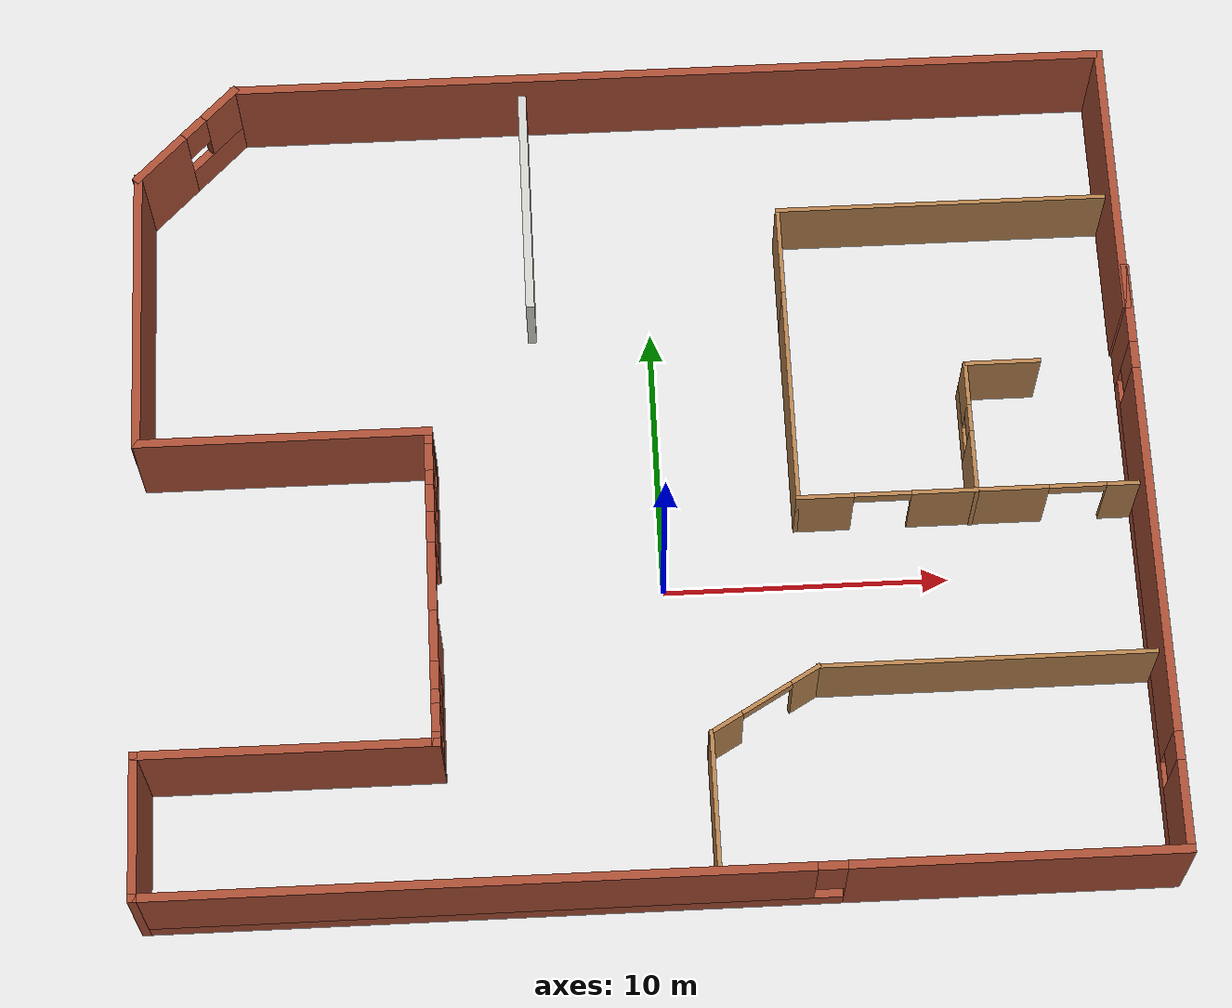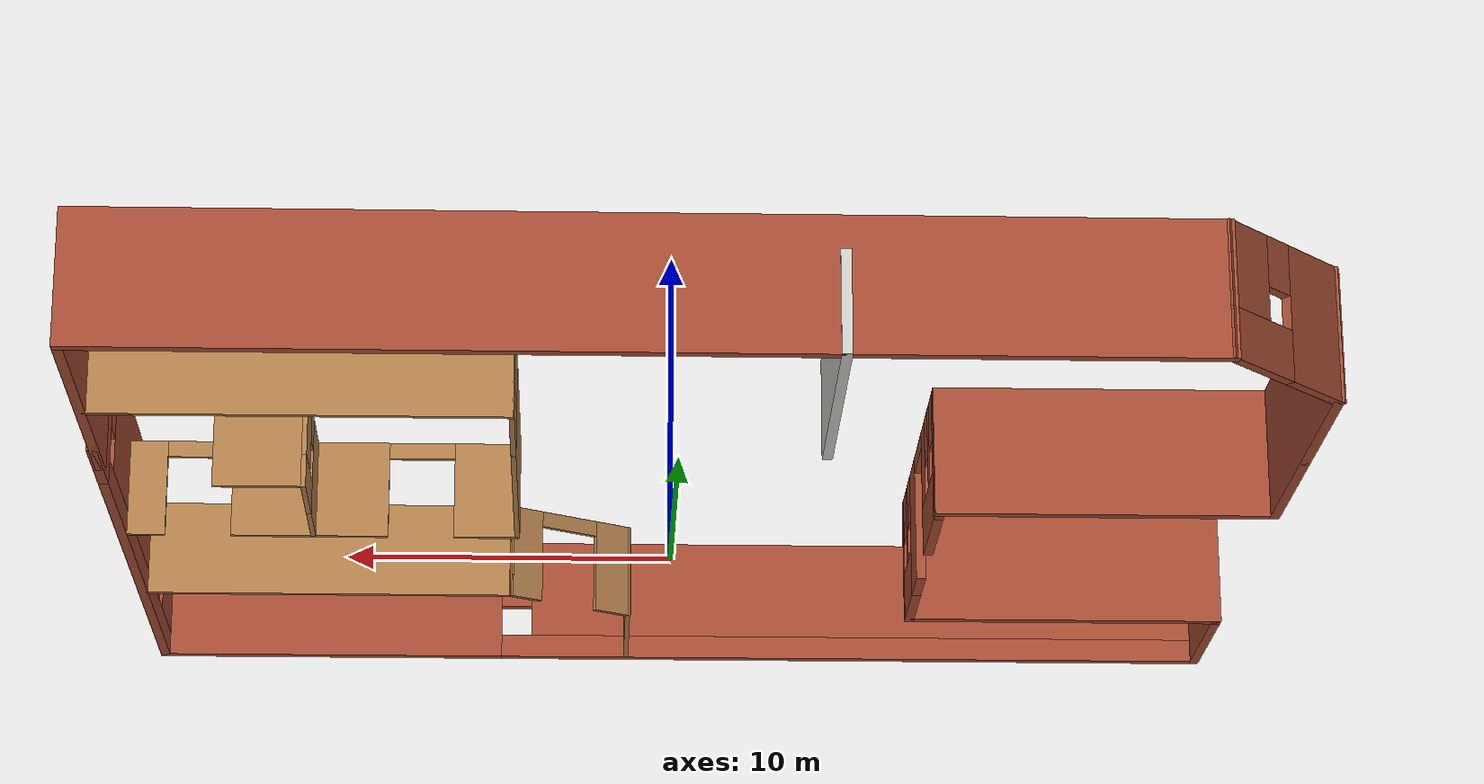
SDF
<?xml version='1.0'?>
<sdf version='1.6'>
  <model name='Building'>
    <pose frame=''>-0.669065 3.67457 0 0 -0 0</pose>
    <link name='Wall_12'>
      <collision name='Wall_12_Collision'>
        <geometry>
          <box>
            <size>10.4 0.3 4</size>
          </box>
        </geometry>
        <pose frame=''>0 0 2 0 -0 0</pose>
      </collision>
      <visual name='Wall_12_Visual'>
        <pose frame=''>0 0 2 0 -0 0</pose>
        <geometry>
          <box>
            <size>10.4 0.3 4</size>
          </box>
        </geometry>
        <material>
          <script>
            <uri>file://media/materials/scripts/gazebo.material</uri>
            <name>Gazebo/Bricks</name>
          </script>
          <ambient>0.333333 0 0 1</ambient>
        </material>
        <meta>
          <layer>0</layer>
        </meta>
      </visual>
      <pose frame=''>-12.3439 1.20443 0 0 -0 0</pose>
    </link>
    <link name='Wall_13'>
      <pose frame=''>-7.29394 -4.47057 0 0 0 -1.5708</pose>
      <visual name='Wall_13_Visual_0'>
        <pose frame=''>-5.51365 0 2 0 -0 0</pose>
        <geometry>
          <box>
            <size>0.62261 0.3 4</size>
          </box>
        </geometry>
        <material>
          <script>
            <uri>file://media/materials/scripts/gazebo.material</uri>
            <name>Gazebo/Bricks</name>
          </script>
          <ambient>0.333333 0 0 1</ambient>
        </material>
        <meta>
          <layer>0</layer>
        </meta>
      </visual>
      <collision name='Wall_13_Collision_0'>
        <geometry>
          <box>
            <size>0.62261 0.3 4</size>
          </box>
        </geometry>
        <pose frame=''>-5.51365 0 2 0 -0 0</pose>
      </collision>
      <visual name='Wall_13_Visual_1'>
        <pose frame=''>1.88818 0 2 0 -0 0</pose>
        <geometry>
          <box>
            <size>1.83467 0.3 4</size>
          </box>
        </geometry>
        <material>
          <script>
            <uri>file://media/materials/scripts/gazebo.material</uri>
            <name>Gazebo/Bricks</name>
          </script>
          <ambient>0.333333 0 0 1</ambient>
        </material>
        <meta>
          <layer>0</layer>
        </meta>
      </visual>
      <collision name='Wall_13_Collision_1'>
        <geometry>
          <box>
            <size>1.83467 0.3 4</size>
          </box>
        </geometry>
        <pose frame=''>1.88818 0 2 0 -0 0</pose>
      </collision>
      <visual name='Wall_13_Visual_2'>
        <pose frame=''>-3.36575 0 0.75 0 -0 0</pose>
        <geometry>
          <box>
            <size>3.6732 0.3 1.5</size>
          </box>
        </geometry>
        <material>
          <script>
            <uri>file://media/materials/scripts/gazebo.material</uri>
            <name>Gazebo/Bricks</name>
          </script>
          <ambient>0.333333 0 0 1</ambient>
        </material>
        <meta>
          <layer>0</layer>
        </meta>
      </visual>
      <collision name='Wall_13_Collision_2'>
        <geometry>
          <box>
            <size>3.6732 0.3 1.5</size>
          </box>
        </geometry>
        <pose frame=''>-3.36575 0 0.75 0 -0 0</pose>
      </collision>
      <visual name='Wall_13_Visual_3'>
        <pose frame=''>4.31524 0 0.75 0 -0 0</pose>
        <geometry>
          <box>
            <size>3.01944 0.3 1.5</size>
          </box>
        </geometry>
        <material>
          <script>
            <uri>file://media/materials/scripts/gazebo.material</uri>
            <name>Gazebo/Bricks</name>
          </script>
          <ambient>0.333333 0 0 1</ambient>
        </material>
        <meta>
          <layer>0</layer>
        </meta>
      </visual>
      <collision name='Wall_13_Collision_3'>
        <geometry>
          <box>
            <size>3.01944 0.3 1.5</size>
          </box>
        </geometry>
        <pose frame=''>4.31524 0 0.75 0 -0 0</pose>
      </collision>
      <visual name='Wall_13_Visual_4'>
        <pose frame=''>-3.93532 0 2.75 0 -0 0</pose>
        <geometry>
          <box>
            <size>0.534062 0.3 2.5</size>
          </box>
        </geometry>
        <material>
          <script>
            <uri>file://media/materials/scripts/gazebo.material</uri>
            <name>Gazebo/Bricks</name>
          </script>
          <ambient>0.333333 0 0 1</ambient>
        </material>
        <meta>
          <layer>0</layer>
        </meta>
      </visual>
      <collision name='Wall_13_Collision_4'>
        <geometry>
          <box>
            <size>0.534062 0.3 2.5</size>
          </box>
        </geometry>
        <pose frame=''>-3.93532 0 2.75 0 -0 0</pose>
      </collision>
      <visual name='Wall_13_Visual_5'>
        <pose frame=''>-2.09872 0 2.75 0 -0 0</pose>
        <geometry>
          <box>
            <size>1.13914 0.3 2.5</size>
          </box>
        </geometry>
        <material>
          <script>
            <uri>file://media/materials/scripts/gazebo.material</uri>
            <name>Gazebo/Bricks</name>
          </script>
          <ambient>0.333333 0 0 1</ambient>
        </material>
        <meta>
          <layer>0</layer>
        </meta>
      </visual>
      <collision name='Wall_13_Collision_5'>
        <geometry>
          <box>
            <size>1.13914 0.3 2.5</size>
          </box>
        </geometry>
        <pose frame=''>-2.09872 0 2.75 0 -0 0</pose>
      </collision>
      <visual name='Wall_13_Visual_6'>
        <pose frame=''>-2.09872 0 2.75 0 -0 0</pose>
        <geometry>
          <box>
            <size>1.13914 0.3 2.5</size>
          </box>
        </geometry>
        <material>
          <script>
            <uri>file://media/materials/scripts/gazebo.material</uri>
            <name>Gazebo/Bricks</name>
          </script>
          <ambient>0.333333 0 0 1</ambient>
        </material>
        <meta>
          <layer>0</layer>
        </meta>
      </visual>
      <collision name='Wall_13_Collision_6'>
        <geometry>
          <box>
            <size>1.13914 0.3 2.5</size>
          </box>
        </geometry>
        <pose frame=''>-2.09872 0 2.75 0 -0 0</pose>
      </collision>
      <visual name='Wall_13_Visual_7'>
        <pose frame=''>4.05455 0 2.75 0 -0 0</pose>
        <geometry>
          <box>
            <size>0.49807 0.3 2.5</size>
          </box>
        </geometry>
        <material>
          <script>
            <uri>file://media/materials/scripts/gazebo.material</uri>
            <name>Gazebo/Bricks</name>
          </script>
          <ambient>0.333333 0 0 1</ambient>
        </material>
        <meta>
          <layer>0</layer>
        </meta>
      </visual>
      <collision name='Wall_13_Collision_7'>
        <geometry>
          <box>
            <size>0.49807 0.3 2.5</size>
          </box>
        </geometry>
        <pose frame=''>4.05455 0 2.75 0 -0 0</pose>
      </collision>
      <visual name='Wall_13_Visual_8'>
        <pose frame=''>5.56427 0 2.75 0 -0 0</pose>
        <geometry>
          <box>
            <size>0.521372 0.3 2.5</size>
          </box>
        </geometry>
        <material>
          <script>
            <uri>file://media/materials/scripts/gazebo.material</uri>
            <name>Gazebo/Bricks</name>
          </script>
          <ambient>0.333333 0 0 1</ambient>
        </material>
        <meta>
          <layer>0</layer>
        </meta>
      </visual>
      <collision name='Wall_13_Collision_8'>
        <geometry>
          <box>
            <size>0.521372 0.3 2.5</size>
          </box>
        </geometry>
        <pose frame=''>5.56427 0 2.75 0 -0 0</pose>
      </collision>
      <visual name='Wall_13_Visual_9'>
        <pose frame=''>-4.70235 0 3.25 0 -0 0</pose>
        <geometry>
          <box>
            <size>1 0.3 1.5</size>
          </box>
        </geometry>
        <material>
          <script>
            <uri>file://media/materials/scripts/gazebo.material</uri>
            <name>Gazebo/Bricks</name>
          </script>
          <ambient>0.333333 0 0 1</ambient>
        </material>
        <meta>
          <layer>0</layer>
        </meta>
      </visual>
      <collision name='Wall_13_Collision_9'>
        <geometry>
          <box>
            <size>1 0.3 1.5</size>
          </box>
        </geometry>
        <pose frame=''>-4.70235 0 3.25 0 -0 0</pose>
      </collision>
      <visual name='Wall_13_Visual_10'>
        <pose frame=''>3.30552 0 3.25 0 -0 0</pose>
        <geometry>
          <box>
            <size>1 0.3 1.5</size>
          </box>
        </geometry>
        <material>
          <script>
            <uri>file://media/materials/scripts/gazebo.material</uri>
            <name>Gazebo/Bricks</name>
          </script>
          <ambient>0.333333 0 0 1</ambient>
        </material>
        <meta>
          <layer>0</layer>
        </meta>
      </visual>
      <collision name='Wall_13_Collision_10'>
        <geometry>
          <box>
            <size>1 0.3 1.5</size>
          </box>
        </geometry>
        <pose frame=''>3.30552 0 3.25 0 -0 0</pose>
      </collision>
      <visual name='Wall_13_Visual_11'>
        <pose frame=''>-3.16829 0 3.25 0 -0 0</pose>
        <geometry>
          <box>
            <size>1 0.3 1.5</size>
          </box>
        </geometry>
        <material>
          <script>
            <uri>file://media/materials/scripts/gazebo.material</uri>
            <name>Gazebo/Bricks</name>
          </script>
          <ambient>0.333333 0 0 1</ambient>
        </material>
        <meta>
          <layer>0</layer>
        </meta>
      </visual>
      <collision name='Wall_13_Collision_11'>
        <geometry>
          <box>
            <size>1 0.3 1.5</size>
          </box>
        </geometry>
        <pose frame=''>-3.16829 0 3.25 0 -0 0</pose>
      </collision>
      <visual name='Wall_13_Visual_12'>
        <pose frame=''>4.80359 0 3.25 0 -0 0</pose>
        <geometry>
          <box>
            <size>1 0.3 1.5</size>
          </box>
        </geometry>
        <material>
          <script>
            <uri>file://media/materials/scripts/gazebo.material</uri>
            <name>Gazebo/Bricks</name>
          </script>
          <ambient>0.333333 0 0 1</ambient>
        </material>
        <meta>
          <layer>0</layer>
        </meta>
      </visual>
      <collision name='Wall_13_Collision_12'>
        <geometry>
          <box>
            <size>1 0.3 1.5</size>
          </box>
        </geometry>
        <pose frame=''>4.80359 0 3.25 0 -0 0</pose>
      </collision>
      <visual name='Wall_13_Visual_13'>
        <pose frame=''>-0.279151 0 3.75 0 -0 0</pose>
        <geometry>
          <box>
            <size>2.5 0.3 0.5</size>
          </box>
        </geometry>
        <material>
          <script>
            <uri>file://media/materials/scripts/gazebo.material</uri>
            <name>Gazebo/Bricks</name>
          </script>
          <ambient>0.333333 0 0 1</ambient>
        </material>
        <meta>
          <layer>0</layer>
        </meta>
      </visual>
      <collision name='Wall_13_Collision_13'>
        <geometry>
          <box>
            <size>2.5 0.3 0.5</size>
          </box>
        </geometry>
        <pose frame=''>-0.279151 0 3.75 0 -0 0</pose>
      </collision>
      <visual name='Wall_13_Visual_14'>
        <pose frame=''>-0.279151 0 3.75 0 -0 0</pose>
        <geometry>
          <box>
            <size>2.5 0.3 0.5</size>
          </box>
        </geometry>
        <material>
          <script>
            <uri>file://media/materials/scripts/gazebo.material</uri>
            <name>Gazebo/Bricks</name>
          </script>
          <ambient>0.333333 0 0 1</ambient>
        </material>
        <meta>
          <layer>0</layer>
        </meta>
      </visual>
      <collision name='Wall_13_Collision_14'>
        <geometry>
          <box>
            <size>2.5 0.3 0.5</size>
          </box>
        </geometry>
        <pose frame=''>-0.279151 0 3.75 0 -0 0</pose>
      </collision>
    </link>
    <link name='Wall_14'>
      <collision name='Wall_14_Collision'>
        <geometry>
          <box>
            <size>10.4 0.3 4</size>
          </box>
        </geometry>
        <pose frame=''>0 0 2 0 -0 0</pose>
      </collision>
      <visual name='Wall_14_Visual'>
        <pose frame=''>0 0 2 0 -0 0</pose>
        <geometry>
          <box>
            <size>10.4 0.3 4</size>
          </box>
        </geometry>
        <material>
          <script>
            <uri>file://media/materials/scripts/gazebo.material</uri>
            <name>Gazebo/Bricks</name>
          </script>
          <ambient>0.333333 0 0 1</ambient>
        </material>
        <meta>
          <layer>0</layer>
        </meta>
      </visual>
      <pose frame=''>-12.3439 -10.1456 0 0 -0 3.14159</pose>
    </link>
    <link name='Wall_15'>
      <collision name='Wall_15_Collision'>
        <geometry>
          <box>
            <size>5.2 0.3 4</size>
          </box>
        </geometry>
        <pose frame=''>0 0 2 0 -0 0</pose>
      </collision>
      <visual name='Wall_15_Visual'>
        <pose frame=''>0 0 2 0 -0 0</pose>
        <geometry>
          <box>
            <size>5.2 0.3 4</size>
          </box>
        </geometry>
        <material>
          <script>
            <uri>file://media/materials/scripts/gazebo.material</uri>
            <name>Gazebo/Bricks</name>
          </script>
          <ambient>0.333333 0 0 1</ambient>
        </material>
        <meta>
          <layer>0</layer>
        </meta>
      </visual>
      <pose frame=''>-17.3939 -12.5956 0 0 0 -1.5708</pose>
    </link>
    <link name='Wall_17'>
      <collision name='Wall_17_Collision'>
        <geometry>
          <box>
            <size>8 0.15 3</size>
          </box>
        </geometry>
        <pose frame=''>0 0 1.5 0 -0 0</pose>
      </collision>
      <visual name='Wall_17_Visual'>
        <pose frame=''>0 0 1.5 0 -0 0</pose>
        <geometry>
          <box>
            <size>8 0.15 3</size>
          </box>
        </geometry>
        <material>
          <script>
            <uri>file://media/materials/scripts/gazebo.material</uri>
            <name>Gazebo/Wood</name>
          </script>
          <ambient>0.921569 0.807843 0.615686 1</ambient>
        </material>
        <meta>
          <layer>0</layer>
        </meta>
      </visual>
      <pose frame=''>5.41606 2.42343 0 0 0 -1.5708</pose>
    </link>
    <link name='Wall_18'>
      <pose frame=''>11.4661 -1.50157 0 0 -0 0</pose>
      <visual name='Wall_18_Visual_0'>
        <pose frame=''>-5.11618 0 1.5 0 -0 0</pose>
        <geometry>
          <box>
            <size>2.01764 0.15 3</size>
          </box>
        </geometry>
        <material>
          <script>
            <uri>file://media/materials/scripts/gazebo.material</uri>
            <name>Gazebo/Wood</name>
          </script>
          <ambient>0.921569 0.807843 0.615686 1</ambient>
        </material>
        <meta>
          <layer>0</layer>
        </meta>
      </visual>
      <collision name='Wall_18_Collision_0'>
        <geometry>
          <box>
            <size>2.01764 0.15 3</size>
          </box>
        </geometry>
        <pose frame=''>-5.11618 0 1.5 0 -0 0</pose>
      </collision>
      <visual name='Wall_18_Visual_1'>
        <pose frame=''>0.290046 0 1.5 0 -0 0</pose>
        <geometry>
          <box>
            <size>4.79482 0.15 3</size>
          </box>
        </geometry>
        <material>
          <script>
            <uri>file://media/materials/scripts/gazebo.material</uri>
            <name>Gazebo/Wood</name>
          </script>
          <ambient>0.921569 0.807843 0.615686 1</ambient>
        </material>
        <meta>
          <layer>0</layer>
        </meta>
      </visual>
      <collision name='Wall_18_Collision_1'>
        <geometry>
          <box>
            <size>4.79482 0.15 3</size>
          </box>
        </geometry>
        <pose frame=''>0.290046 0 1.5 0 -0 0</pose>
      </collision>
      <visual name='Wall_18_Visual_2'>
        <pose frame=''>5.40623 0 1.5 0 -0 0</pose>
        <geometry>
          <box>
            <size>1.43755 0.15 3</size>
          </box>
        </geometry>
        <material>
          <script>
            <uri>file://media/materials/scripts/gazebo.material</uri>
            <name>Gazebo/Wood</name>
          </script>
          <ambient>0.921569 0.807843 0.615686 1</ambient>
        </material>
        <meta>
          <layer>0</layer>
        </meta>
      </visual>
      <collision name='Wall_18_Collision_2'>
        <geometry>
          <box>
            <size>1.43755 0.15 3</size>
          </box>
        </geometry>
        <pose frame=''>5.40623 0 1.5 0 -0 0</pose>
      </collision>
      <visual name='Wall_18_Visual_3'>
        <pose frame=''>-3.10736 0 2.75 0 -0 0</pose>
        <geometry>
          <box>
            <size>2 0.15 0.5</size>
          </box>
        </geometry>
        <material>
          <script>
            <uri>file://media/materials/scripts/gazebo.material</uri>
            <name>Gazebo/Wood</name>
          </script>
          <ambient>0.921569 0.807843 0.615686 1</ambient>
        </material>
        <meta>
          <layer>0</layer>
        </meta>
      </visual>
      <collision name='Wall_18_Collision_3'>
        <geometry>
          <box>
            <size>2 0.15 0.5</size>
          </box>
        </geometry>
        <pose frame=''>-3.10736 0 2.75 0 -0 0</pose>
      </collision>
      <visual name='Wall_18_Visual_4'>
        <pose frame=''>3.68745 0 2.75 0 -0 0</pose>
        <geometry>
          <box>
            <size>2 0.15 0.5</size>
          </box>
        </geometry>
        <material>
          <script>
            <uri>file://media/materials/scripts/gazebo.material</uri>
            <name>Gazebo/Wood</name>
          </script>
          <ambient>0.921569 0.807843 0.615686 1</ambient>
        </material>
        <meta>
          <layer>0</layer>
        </meta>
      </visual>
      <collision name='Wall_18_Collision_4'>
        <geometry>
          <box>
            <size>2 0.15 0.5</size>
          </box>
        </geometry>
        <pose frame=''>3.68745 0 2.75 0 -0 0</pose>
      </collision>
    </link>
    <link name='Wall_2'>
      <pose frame=''>17.4561 -4.37057 0 0 0 -1.5708</pose>
      <visual name='Wall_2_Visual_0'>
        <pose frame=''>-9.30999 0 2 0 -0 0</pose>
        <geometry>
          <box>
            <size>3.03002 0.3 4</size>
          </box>
        </geometry>
        <material>
          <script>
            <uri>file://media/materials/scripts/gazebo.material</uri>
            <name>Gazebo/Bricks</name>
          </script>
          <ambient>0.333333 0 0 1</ambient>
        </material>
        <meta>
          <layer>0</layer>
        </meta>
      </visual>
      <collision name='Wall_2_Collision_0'>
        <geometry>
          <box>
            <size>3.03002 0.3 4</size>
          </box>
        </geometry>
        <pose frame=''>-9.30999 0 2 0 -0 0</pose>
      </collision>
      <visual name='Wall_2_Visual_1'>
        <pose frame=''>1.51501 0 0.375 0 -0 0</pose>
        <geometry>
          <box>
            <size>18.62 0.3 0.75</size>
          </box>
        </geometry>
        <material>
          <script>
            <uri>file://media/materials/scripts/gazebo.material</uri>
            <name>Gazebo/Bricks</name>
          </script>
          <ambient>0.333333 0 0 1</ambient>
        </material>
        <meta>
          <layer>0</layer>
        </meta>
      </visual>
      <collision name='Wall_2_Collision_1'>
        <geometry>
          <box>
            <size>18.62 0.3 0.75</size>
          </box>
        </geometry>
        <pose frame=''>1.51501 0 0.375 0 -0 0</pose>
      </collision>
      <visual name='Wall_2_Visual_2'>
        <pose frame=''>-0.098897 0 2.375 0 -0 0</pose>
        <geometry>
          <box>
            <size>13.3922 0.3 3.25</size>
          </box>
        </geometry>
        <material>
          <script>
            <uri>file://media/materials/scripts/gazebo.material</uri>
            <name>Gazebo/Bricks</name>
          </script>
          <ambient>0.333333 0 0 1</ambient>
        </material>
        <meta>
          <layer>0</layer>
        </meta>
      </visual>
      <collision name='Wall_2_Collision_2'>
        <geometry>
          <box>
            <size>13.3922 0.3 3.25</size>
          </box>
        </geometry>
        <pose frame=''>-0.098897 0 2.375 0 -0 0</pose>
      </collision>
      <visual name='Wall_2_Visual_3'>
        <pose frame=''>9.2111 0 2.375 0 -0 0</pose>
        <geometry>
          <box>
            <size>3.22781 0.3 3.25</size>
          </box>
        </geometry>
        <material>
          <script>
            <uri>file://media/materials/scripts/gazebo.material</uri>
            <name>Gazebo/Bricks</name>
          </script>
          <ambient>0.333333 0 0 1</ambient>
        </material>
        <meta>
          <layer>0</layer>
        </meta>
      </visual>
      <collision name='Wall_2_Collision_3'>
        <geometry>
          <box>
            <size>3.22781 0.3 3.25</size>
          </box>
        </geometry>
        <pose frame=''>9.2111 0 2.375 0 -0 0</pose>
      </collision>
      <visual name='Wall_2_Visual_4'>
        <pose frame=''>-7.29498 0 2.875 0 -0 0</pose>
        <geometry>
          <box>
            <size>1 0.3 2.25</size>
          </box>
        </geometry>
        <material>
          <script>
            <uri>file://media/materials/scripts/gazebo.material</uri>
            <name>Gazebo/Bricks</name>
          </script>
          <ambient>0.333333 0 0 1</ambient>
        </material>
        <meta>
          <layer>0</layer>
        </meta>
      </visual>
      <collision name='Wall_2_Collision_4'>
        <geometry>
          <box>
            <size>1 0.3 2.25</size>
          </box>
        </geometry>
        <pose frame=''>-7.29498 0 2.875 0 -0 0</pose>
      </collision>
      <visual name='Wall_2_Visual_5'>
        <pose frame=''>7.09719 0 2.875 0 -0 0</pose>
        <geometry>
          <box>
            <size>1 0.3 2.25</size>
          </box>
        </geometry>
        <material>
          <script>
            <uri>file://media/materials/scripts/gazebo.material</uri>
            <name>Gazebo/Bricks</name>
          </script>
          <ambient>0.333333 0 0 1</ambient>
        </material>
        <meta>
          <layer>0</layer>
        </meta>
      </visual>
      <collision name='Wall_2_Collision_5'>
        <geometry>
          <box>
            <size>1 0.3 2.25</size>
          </box>
        </geometry>
        <pose frame=''>7.09719 0 2.875 0 -0 0</pose>
      </collision>
    </link>
    <link name='Wall_23'>
      <collision name='Wall_23_Collision'>
        <geometry>
          <box>
            <size>5.25 0.15 3</size>
          </box>
        </geometry>
        <pose frame=''>0 0 1.5 0 -0 0</pose>
      </collision>
      <visual name='Wall_23_Visual'>
        <pose frame=''>0 0 1.5 0 -0 0</pose>
        <geometry>
          <box>
            <size>5.25 0.15 3</size>
          </box>
        </geometry>
        <material>
          <script>
            <uri>file://media/materials/scripts/gazebo.material</uri>
            <name>Gazebo/Wood</name>
          </script>
          <ambient>0.333333 0.333333 1 1</ambient>
        </material>
        <meta>
          <layer>0</layer>
        </meta>
      </visual>
      <pose frame=''>1.93806 -12.4486 0 0 -0 1.5708</pose>
    </link>
    <link name='Wall_24'>
      <pose frame=''>3.82206 -8.81107 0 0 -0 0.523508</pose>
      <visual name='Wall_24_Visual_0'>
        <pose frame=''>-1.59211 0 1.5 0 -0 0</pose>
        <geometry>
          <box>
            <size>1.31578 0.15 3</size>
          </box>
        </geometry>
        <material>
          <script>
            <uri>file://media/materials/scripts/gazebo.material</uri>
            <name>Gazebo/Wood</name>
          </script>
          <ambient>0.333333 0.333333 1 1</ambient>
        </material>
        <meta>
          <layer>0</layer>
        </meta>
      </visual>
      <collision name='Wall_24_Collision_0'>
        <geometry>
          <box>
            <size>1.31578 0.15 3</size>
          </box>
        </geometry>
        <pose frame=''>-1.59211 0 1.5 0 -0 0</pose>
      </collision>
      <visual name='Wall_24_Visual_1'>
        <pose frame=''>1.65789 0 1.5 0 -0 0</pose>
        <geometry>
          <box>
            <size>1.18422 0.15 3</size>
          </box>
        </geometry>
        <material>
          <script>
            <uri>file://media/materials/scripts/gazebo.material</uri>
            <name>Gazebo/Wood</name>
          </script>
          <ambient>0.333333 0.333333 1 1</ambient>
        </material>
        <meta>
          <layer>0</layer>
        </meta>
      </visual>
      <collision name='Wall_24_Collision_1'>
        <geometry>
          <box>
            <size>1.18422 0.15 3</size>
          </box>
        </geometry>
        <pose frame=''>1.65789 0 1.5 0 -0 0</pose>
      </collision>
      <visual name='Wall_24_Visual_2'>
        <pose frame=''>0.065781 0 2.75 0 -0 0</pose>
        <geometry>
          <box>
            <size>2 0.15 0.5</size>
          </box>
        </geometry>
        <material>
          <script>
            <uri>file://media/materials/scripts/gazebo.material</uri>
            <name>Gazebo/Wood</name>
          </script>
          <ambient>0.333333 0.333333 1 1</ambient>
        </material>
        <meta>
          <layer>0</layer>
        </meta>
      </visual>
      <collision name='Wall_24_Collision_2'>
        <geometry>
          <box>
            <size>2 0.15 0.5</size>
          </box>
        </geometry>
        <pose frame=''>0.065781 0 2.75 0 -0 0</pose>
      </collision>
    </link>
    <link name='Wall_25'>
      <collision name='Wall_25_Collision'>
        <geometry>
          <box>
            <size>11.75 0.15 3</size>
          </box>
        </geometry>
        <pose frame=''>0 0 1.5 0 -0 0</pose>
      </collision>
      <visual name='Wall_25_Visual'>
        <pose frame=''>0 0 1.5 0 -0 0</pose>
        <geometry>
          <box>
            <size>11.75 0.15 3</size>
          </box>
        </geometry>
        <material>
          <script>
            <uri>file://media/materials/scripts/gazebo.material</uri>
            <name>Gazebo/Wood</name>
          </script>
          <ambient>0.333333 0.333333 1 1</ambient>
        </material>
        <meta>
          <layer>0</layer>
        </meta>
      </visual>
      <pose frame=''>11.5061 -7.72357 0 0 -0 0</pose>
    </link>
    <link name='Wall_27'>
      <pose frame=''>11.6311 0.898434 0 0 -0 1.5708</pose>
      <visual name='Wall_27_Visual_0'>
        <pose frame=''>-1.33266 0 1.5 0 -0 0</pose>
        <geometry>
          <box>
            <size>2.33468 0.15 3</size>
          </box>
        </geometry>
        <material>
          <script>
            <uri>file://media/materials/scripts/gazebo.material</uri>
            <name>Gazebo/Wood</name>
          </script>
          <ambient>0.921569 0.807843 0.615686 1</ambient>
        </material>
        <meta>
          <layer>0</layer>
        </meta>
      </visual>
      <collision name='Wall_27_Collision_0'>
        <geometry>
          <box>
            <size>2.33468 0.15 3</size>
          </box>
        </geometry>
        <pose frame=''>-1.33266 0 1.5 0 -0 0</pose>
      </collision>
      <visual name='Wall_27_Visual_1'>
        <pose frame=''>1.16734 0 0.5 0 -0 0</pose>
        <geometry>
          <box>
            <size>2.66532 0.15 1</size>
          </box>
        </geometry>
        <material>
          <script>
            <uri>file://media/materials/scripts/gazebo.material</uri>
            <name>Gazebo/Wood</name>
          </script>
          <ambient>0.921569 0.807843 0.615686 1</ambient>
        </material>
        <meta>
          <layer>0</layer>
        </meta>
      </visual>
      <collision name='Wall_27_Collision_1'>
        <geometry>
          <box>
            <size>2.66532 0.15 1</size>
          </box>
        </geometry>
        <pose frame=''>1.16734 0 0.5 0 -0 0</pose>
      </collision>
      <visual name='Wall_27_Visual_2'>
        <pose frame=''>1.66734 0 2 0 -0 0</pose>
        <geometry>
          <box>
            <size>1.66532 0.15 2</size>
          </box>
        </geometry>
        <material>
          <script>
            <uri>file://media/materials/scripts/gazebo.material</uri>
            <name>Gazebo/Wood</name>
          </script>
          <ambient>0.921569 0.807843 0.615686 1</ambient>
        </material>
        <meta>
          <layer>0</layer>
        </meta>
      </visual>
      <collision name='Wall_27_Collision_2'>
        <geometry>
          <box>
            <size>1.66532 0.15 2</size>
          </box>
        </geometry>
        <pose frame=''>1.66734 0 2 0 -0 0</pose>
      </collision>
      <visual name='Wall_27_Visual_3'>
        <pose frame=''>0.334681 0 2.5 0 -0 0</pose>
        <geometry>
          <box>
            <size>1 0.15 1</size>
          </box>
        </geometry>
        <material>
          <script>
            <uri>file://media/materials/scripts/gazebo.material</uri>
            <name>Gazebo/Wood</name>
          </script>
          <ambient>0.921569 0.807843 0.615686 1</ambient>
        </material>
        <meta>
          <layer>0</layer>
        </meta>
      </visual>
      <collision name='Wall_27_Collision_3'>
        <geometry>
          <box>
            <size>1 0.15 1</size>
          </box>
        </geometry>
        <pose frame=''>0.334681 0 2.5 0 -0 0</pose>
      </collision>
    </link>
    <link name='Wall_28'>
      <collision name='Wall_28_Collision'>
        <geometry>
          <box>
            <size>2.75 0.15 3</size>
          </box>
        </geometry>
        <pose frame=''>0 0 1.5 0 -0 0</pose>
      </collision>
      <visual name='Wall_28_Visual'>
        <pose frame=''>0 0 1.5 0 -0 0</pose>
        <geometry>
          <box>
            <size>2.75 0.15 3</size>
          </box>
        </geometry>
        <material>
          <script>
            <uri>file://media/materials/scripts/gazebo.material</uri>
            <name>Gazebo/Wood</name>
          </script>
          <ambient>0.921569 0.807843 0.615686 1</ambient>
        </material>
        <meta>
          <layer>0</layer>
        </meta>
      </visual>
      <pose frame=''>12.9311 3.32343 0 0 -0 0</pose>
    </link>
    <link name='Wall_3'>
      <pose frame=''>0.031065 -15.0456 0 0 -0 3.14159</pose>
      <visual name='Wall_3_Visual_0'>
        <pose frame=''>-11.837 0 2 0 -0 0</pose>
        <geometry>
          <box>
            <size>11.4759 0.3 4</size>
          </box>
        </geometry>
        <material>
          <script>
            <uri>file://media/materials/scripts/gazebo.material</uri>
            <name>Gazebo/Bricks</name>
          </script>
          <ambient>0.333333 0 0 1</ambient>
        </material>
        <meta>
          <layer>0</layer>
        </meta>
      </visual>
      <collision name='Wall_3_Collision_0'>
        <geometry>
          <box>
            <size>11.4759 0.3 4</size>
          </box>
        </geometry>
        <pose frame=''>-11.837 0 2 0 -0 0</pose>
      </collision>
      <visual name='Wall_3_Visual_1'>
        <pose frame=''>5.73797 0 0.375 0 -0 0</pose>
        <geometry>
          <box>
            <size>23.674 0.3 0.75</size>
          </box>
        </geometry>
        <material>
          <script>
            <uri>file://media/materials/scripts/gazebo.material</uri>
            <name>Gazebo/Bricks</name>
          </script>
          <ambient>0.333333 0 0 1</ambient>
        </material>
        <meta>
          <layer>0</layer>
        </meta>
      </visual>
      <collision name='Wall_3_Collision_1'>
        <geometry>
          <box>
            <size>23.674 0.3 0.75</size>
          </box>
        </geometry>
        <pose frame=''>5.73797 0 0.375 0 -0 0</pose>
      </collision>
      <visual name='Wall_3_Visual_2'>
        <pose frame=''>6.23797 0 2.375 0 -0 0</pose>
        <geometry>
          <box>
            <size>22.674 0.3 3.25</size>
          </box>
        </geometry>
        <material>
          <script>
            <uri>file://media/materials/scripts/gazebo.material</uri>
            <name>Gazebo/Bricks</name>
          </script>
          <ambient>0.333333 0 0 1</ambient>
        </material>
        <meta>
          <layer>0</layer>
        </meta>
      </visual>
      <collision name='Wall_3_Collision_2'>
        <geometry>
          <box>
            <size>22.674 0.3 3.25</size>
          </box>
        </geometry>
        <pose frame=''>6.23797 0 2.375 0 -0 0</pose>
      </collision>
      <visual name='Wall_3_Visual_3'>
        <pose frame=''>-5.59903 0 2.875 0 -0 0</pose>
        <geometry>
          <box>
            <size>1 0.3 2.25</size>
          </box>
        </geometry>
        <material>
          <script>
            <uri>file://media/materials/scripts/gazebo.material</uri>
            <name>Gazebo/Bricks</name>
          </script>
          <ambient>0.333333 0 0 1</ambient>
        </material>
        <meta>
          <layer>0</layer>
        </meta>
      </visual>
      <collision name='Wall_3_Collision_3'>
        <geometry>
          <box>
            <size>1 0.3 2.25</size>
          </box>
        </geometry>
        <pose frame=''>-5.59903 0 2.875 0 -0 0</pose>
      </collision>
    </link>
    <link name='Wall_37'>
      <collision name='Wall_37_Collision'>
        <geometry>
          <box>
            <size>10.65 0.3 4</size>
          </box>
        </geometry>
        <pose frame=''>0 0 2 0 -0 0</pose>
      </collision>
      <visual name='Wall_37_Visual'>
        <pose frame=''>0 0 2 0 -0 0</pose>
        <geometry>
          <box>
            <size>10.65 0.3 4</size>
          </box>
        </geometry>
        <material>
          <script>
            <uri>file://media/materials/scripts/gazebo.material</uri>
            <name>Gazebo/Bricks</name>
          </script>
          <ambient>0.333333 0 0 1</ambient>
        </material>
        <meta>
          <layer>0</layer>
        </meta>
      </visual>
      <pose frame=''>-17.3939 6.37943 0 0 -0 1.5708</pose>
    </link>
    <link name='Wall_38'>
      <pose frame=''>-15.6794 13.2689 0 0 -0 0.785398</pose>
      <visual name='Wall_38_Visual_0'>
        <pose frame=''>-1.35264 0 2 0 -0 0</pose>
        <geometry>
          <box>
            <size>2.44405 0.3 4</size>
          </box>
        </geometry>
        <material>
          <script>
            <uri>file://media/materials/scripts/gazebo.material</uri>
            <name>Gazebo/Bricks</name>
          </script>
          <ambient>0.333333 0 0 1</ambient>
        </material>
        <meta>
          <layer>0</layer>
        </meta>
      </visual>
      <collision name='Wall_38_Collision_0'>
        <geometry>
          <box>
            <size>2.44405 0.3 4</size>
          </box>
        </geometry>
        <pose frame=''>-1.35264 0 2 0 -0 0</pose>
      </collision>
      <visual name='Wall_38_Visual_1'>
        <pose frame=''>1.22202 0 0.75 0 -0 0</pose>
        <geometry>
          <box>
            <size>2.70529 0.3 1.5</size>
          </box>
        </geometry>
        <material>
          <script>
            <uri>file://media/materials/scripts/gazebo.material</uri>
            <name>Gazebo/Bricks</name>
          </script>
          <ambient>0.333333 0 0 1</ambient>
        </material>
        <meta>
          <layer>0</layer>
        </meta>
      </visual>
      <collision name='Wall_38_Collision_1'>
        <geometry>
          <box>
            <size>2.70529 0.3 1.5</size>
          </box>
        </geometry>
        <pose frame=''>1.22202 0 0.75 0 -0 0</pose>
      </collision>
      <visual name='Wall_38_Visual_2'>
        <pose frame=''>1.72202 0 2.75 0 -0 0</pose>
        <geometry>
          <box>
            <size>1.70529 0.3 2.5</size>
          </box>
        </geometry>
        <material>
          <script>
            <uri>file://media/materials/scripts/gazebo.material</uri>
            <name>Gazebo/Bricks</name>
          </script>
          <ambient>0.333333 0 0 1</ambient>
        </material>
        <meta>
          <layer>0</layer>
        </meta>
      </visual>
      <collision name='Wall_38_Collision_2'>
        <geometry>
          <box>
            <size>1.70529 0.3 2.5</size>
          </box>
        </geometry>
        <pose frame=''>1.72202 0 2.75 0 -0 0</pose>
      </collision>
      <visual name='Wall_38_Visual_3'>
        <pose frame=''>0.369382 0 3.25 0 -0 0</pose>
        <geometry>
          <box>
            <size>1 0.3 1.5</size>
          </box>
        </geometry>
        <material>
          <script>
            <uri>file://media/materials/scripts/gazebo.material</uri>
            <name>Gazebo/Bricks</name>
          </script>
          <ambient>0.333333 0 0 1</ambient>
        </material>
        <meta>
          <layer>0</layer>
        </meta>
      </visual>
      <collision name='Wall_38_Collision_3'>
        <geometry>
          <box>
            <size>1 0.3 1.5</size>
          </box>
        </geometry>
        <pose frame=''>0.369382 0 3.25 0 -0 0</pose>
      </collision>
    </link>
    <link name='Wall_41'>
      <collision name='Wall_41_Collision'>
        <geometry>
          <box>
            <size>31.6505 0.3 4</size>
          </box>
        </geometry>
        <pose frame=''>0 0 2 0 -0 0</pose>
      </collision>
      <visual name='Wall_41_Visual'>
        <pose frame=''>0 0 2 0 -0 0</pose>
        <geometry>
          <box>
            <size>31.6505 0.3 4</size>
          </box>
        </geometry>
        <material>
          <script>
            <uri>file://media/materials/scripts/gazebo.material</uri>
            <name>Gazebo/Bricks</name>
          </script>
          <ambient>0.333333 0 0 1</ambient>
        </material>
        <meta>
          <layer>0</layer>
        </meta>
      </visual>
      <pose frame=''>1.71006 14.9834 0 0 -0 0</pose>
    </link>
    <link name='Wall_42'>
      <collision name='Wall_42_Collision'>
        <geometry>
          <box>
            <size>10.3995 0.3 4</size>
          </box>
        </geometry>
        <pose frame=''>0 0 2 0 -0 0</pose>
      </collision>
      <visual name='Wall_42_Visual'>
        <pose frame=''>0 0 2 0 -0 0</pose>
        <geometry>
          <box>
            <size>10.3995 0.3 4</size>
          </box>
        </geometry>
        <material>
          <script>
            <uri>file://media/materials/scripts/gazebo.material</uri>
            <name>Gazebo/Bricks</name>
          </script>
          <ambient>0.333333 0 0 1</ambient>
        </material>
        <meta>
          <layer>0</layer>
        </meta>
      </visual>
      <pose frame=''>17.3851 9.93343 0 0 0 -1.5708</pose>
    </link>
    <link name='Wall_46'>
      <collision name='Wall_46_Collision'>
        <geometry>
          <box>
            <size>8.90044 0.3 3</size>
          </box>
        </geometry>
        <pose frame=''>0 0 1.5 0 -0 0</pose>
      </collision>
      <visual name='Wall_46_Visual'>
        <pose frame=''>0 0 1.5 0 -0 0</pose>
        <geometry>
          <box>
            <size>8.90044 0.3 3</size>
          </box>
        </geometry>
        <material>
          <script>
            <uri>file://media/materials/scripts/gazebo.material</uri>
            <name>Gazebo/CeilingTiled</name>
          </script>
          <ambient>0 0.333333 1 1</ambient>
        </material>
        <meta>
          <layer>0</layer>
        </meta>
      </visual>
      <pose frame=''>-3.59694 10.7194 0 0 0 -1.5708</pose>
    </link>
    <link name='Wall_48'>
      <collision name='Wall_48_Collision'>
        <geometry>
          <box>
            <size>3.5 0.15 3</size>
          </box>
        </geometry>
        <pose frame=''>0 0 1.5 0 -0 0</pose>
      </collision>
      <visual name='Wall_48_Visual'>
        <pose frame=''>0 0 1.5 0 -0 0</pose>
        <geometry>
          <box>
            <size>3.5 0.15 3</size>
          </box>
        </geometry>
        <material>
          <script>
            <uri>file://media/materials/scripts/gazebo.material</uri>
            <name>Gazebo/Wood</name>
          </script>
          <ambient>0.921569 0.807843 0.615686 1</ambient>
        </material>
        <meta>
          <layer>0</layer>
        </meta>
      </visual>
      <pose frame=''>5.41606 8.02343 0 0 -0 1.5708</pose>
    </link>
    <link name='Wall_49'>
      <collision name='Wall_49_Collision'>
        <geometry>
          <box>
            <size>12 0.15 3</size>
          </box>
        </geometry>
        <pose frame=''>0 0 1.5 0 -0 0</pose>
      </collision>
      <visual name='Wall_49_Visual'>
        <pose frame=''>0 0 1.5 0 -0 0</pose>
        <geometry>
          <box>
            <size>12 0.15 3</size>
          </box>
        </geometry>
        <material>
          <script>
            <uri>file://media/materials/scripts/gazebo.material</uri>
            <name>Gazebo/Wood</name>
          </script>
          <ambient>0.921569 0.807843 0.615686 1</ambient>
        </material>
        <meta>
          <layer>0</layer>
        </meta>
      </visual>
      <pose frame=''>11.3411 9.69843 0 0 -0 0</pose>
    </link>
    <link name='Wall_8'>
      <collision name='Wall_8_Collision'>
        <geometry>
          <box>
            <size>0.15 0.15 2.5</size>
          </box>
        </geometry>
        <pose frame=''>0 0 1.25 0 -0 0</pose>
      </collision>
      <visual name='Wall_8_Visual'>
        <pose frame=''>0 0 1.25 0 -0 0</pose>
        <geometry>
          <box>
            <size>0.15 0.15 2.5</size>
          </box>
        </geometry>
        <material>
          <script>
            <uri>file://media/materials/scripts/gazebo.material</uri>
            <name>Gazebo/Grey</name>
          </script>
          <ambient>1 1 1 1</ambient>
        </material>
        <meta>
          <layer>0</layer>
        </meta>
      </visual>
      <pose frame=''>-17.3939 6.30443 0 0 -0 0</pose>
    </link>
    <static>1</static>
  </model>
</sdf>
